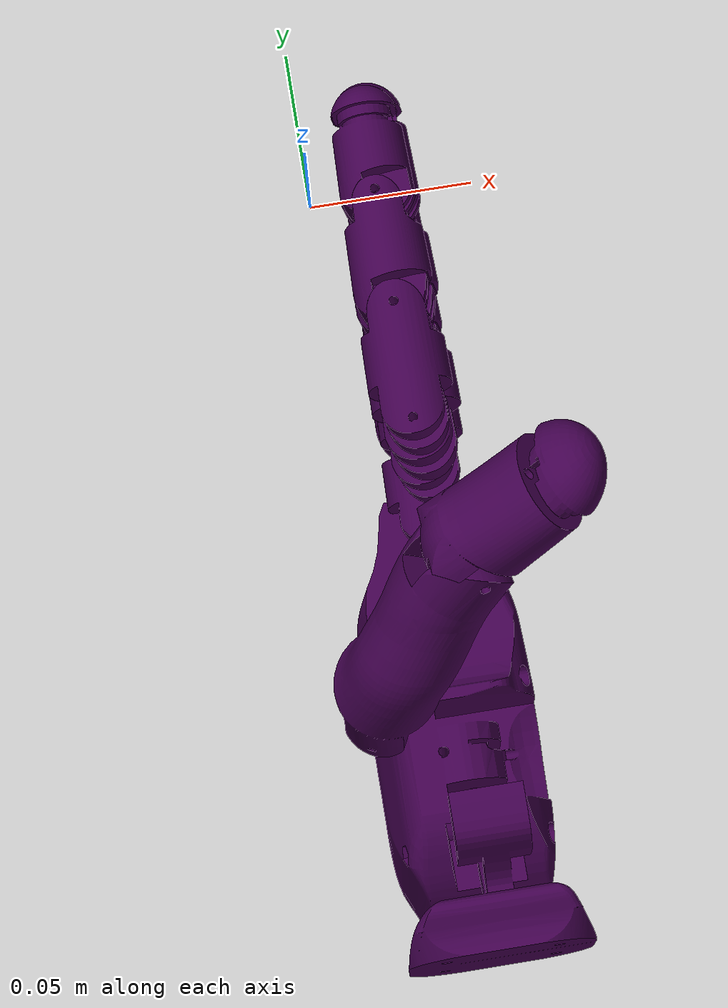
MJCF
<mujoco model="robotic_hand">
    <compiler angle="radian" inertiafromgeom="false" coordinate="local"/>

    <default>
        <joint armature="1" damping="1" limited="true"/>
        <motor ctrllimited="true" ctrlrange="-1 1"/>
    </default>

    <asset>
        <!-- Base -->
        <mesh name="palma_dorso" file="meshes/palma_dorso_link.STL"/>
        <mesh name="conectores" file="meshes/conectores_links.STL"/>

        <!-- Index finger -->
        <mesh name="indice_link0" file="meshes/indice_link0.STL"/>
        <mesh name="indice_link1" file="meshes/indice_link1.STL"/>
        <mesh name="indice_link2" file="meshes/indice_link2.STL"/>

        <!-- Middle finger -->
        <mesh name="medio_link0" file="meshes/medio_link0.STL"/>
        <mesh name="medio_link1" file="meshes/medio_link1.STL"/>
        <mesh name="medio_link2" file="meshes/medio_link2.STL"/>

        <!-- Ring finger -->
        <mesh name="anular_link0" file="meshes/anular_link0.STL"/>
        <mesh name="anular_link1" file="meshes/anular_link1.STL"/>
        <mesh name="anular_link2" file="meshes/anular_link2.STL"/>

        <!-- Little finger -->
        <mesh name="menique_link0" file="meshes/menique_link0.STL"/>
        <mesh name="menique_link1" file="meshes/menique_link1.STL"/>
        <mesh name="menique_link2" file="meshes/menique_link2.STL"/>

        <!-- Thumb -->
        <mesh name="pulgar_link0" file="meshes/pulgar_link0.STL"/>
        <mesh name="pulgar_link1" file="meshes/pulgar_link1.STL"/>

        <material name="purple" rgba="0.25 0.0 0.3 1.0"/>
    </asset>

    <worldbody>
        <body name="base_link" pos="0 0 0">
            <inertial pos="0.01266 0.007711 0.22272" mass="0.20247"
                     diaginertia="0.0014611 0.00098384 0.00050623"
                     xyinertia="3.6753e-05" xzinertia="-4.2033e-06" yzinertia="-0.00016151"/>
            <geom type="mesh" material="purple" mesh="palma_dorso"/>
            <geom type="mesh" material="purple" mesh="conectores" pos="0.00762 -0.225244 0.236582" euler="1.5708 0 0"/>

            <!-- Index finger -->
            <body name="indice_link0" pos="0.017381 -0.10655 0.111803" euler="1.5708 0 0.09642">
                <inertial pos="-0.000138 0.012553 -0.016706" mass="0.0112932"
                         diaginertia="1.70111e-06 1.39435e-06 8.46994e-07"
                         xyinertia="-1.07101e-09" xzinertia="-8.52503e-09" yzinertia="1.09842e-09"/>
                <joint name="joint_indice_0" type="hinge" axis="0 1 0" range="-3.14159 3.14159"/>
                <geom type="mesh" material="purple" mesh="indice_link0"/>

                <body name="indice_link1" pos="0 0.000534 -0.032043">
                    <inertial pos="-0.000615 0.011916 -0.015288" mass="0.0094502"
                             diaginertia="1.06519e-06 9.75778e-07 5.57819e-07"
                             xyinertia="-3.7385e-10" xzinertia="3.33799e-08" yzinertia="2.66689e-09"/>
                    <joint name="joint_indice_1" type="hinge" axis="0 1 0" range="-0.95993 0"/>
                    <geom type="mesh" material="purple" mesh="indice_link1"/>

                    <body name="indice_link2" pos="0 0.001236 -0.031738">
                        <inertial pos="-0.000414 0.01074 -0.013386" mass="0.00844698"
                                 diaginertia="9.20898e-07 9.06546e-07 3.65181e-07"
                                 xyinertia="2.2781e-11" xzinertia="2.33875e-08" yzinertia="-9.81161e-10"/>
                        <joint name="joint_indice_2" type="hinge" axis="0 1 0" range="0 1.1868"/>
                        <geom type="mesh" material="purple" mesh="indice_link2"/>
                    </body>
                </body>
            </body>

            <!-- Middle finger -->
            <body name="medio_link0" pos="0.017396 -0.10571 0.1" euler="1.5708 0 0.12292">
                <inertial pos="-0.000157 -0.004676 -0.017777" mass="0.0148708"
                         diaginertia="2.70022e-06 2.29788e-06 1.24182e-06"
                         xyinertia="-1.50316e-09" xzinertia="-1.3278e-08" yzinertia="8.77395e-09"/>
                <joint name="joint_medio_0" type="hinge" axis="0 1 0" range="-3.14159 3.14159"/>
                <geom type="mesh" material="purple" mesh="medio_link0"/>

                <body name="medio_link1" pos="-2.1e-05 0 -0.03524">
                    <inertial pos="-0.000643 -0.004885 -0.017081" mass="0.0121315"
                             diaginertia="1.64138e-06 1.54301e-06 8.12468e-07"
                             xyinertia="-1.95095e-10" xzinertia="5.14142e-08" yzinertia="5.52304e-10"/>
                    <joint name="joint_medio_1" type="hinge" axis="0 1 0" range="-3.14159 3.14159"/>
                    <geom type="mesh" material="purple" mesh="medio_link1"/>

                    <body name="medio_link2" pos="0 0 -0.035366">
                        <inertial pos="-0.005047 0.007266 0.087066" mass="0.20247"
                                 diaginertia="0.00145186 0.000985511 0.000513804"
                                 xyinertia="5.30453e-05" xzinertia="9.35133e-05" yzinertia="-0.000154434"/>
                        <joint name="joint_medio_2" type="hinge" axis="0.000914 -0.999987 -0.005061" range="-3.14159 3.14159"/>
                        <geom type="mesh" material="purple" mesh="medio_link2"/>
                    </body>
                </body>
            </body>

            <!-- Ring finger -->
            <body name="anular_link0" pos="0.017396 -0.10601 0.079212" euler="1.5708 0 0.13729">
                <inertial pos="-0.000147 -0.012697 -0.017313" mass="0.0126336"
                         diaginertia="2.06877e-06 1.7254e-06 1.00343e-06"
                         xyinertia="-1.20016e-09" xzinertia="-9.77141e-09" yzinertia="6.07253e-09"/>
                <joint name="joint_anular_0" type="hinge" axis="0 1 0" range="-3.14159 3.14159"/>
                <geom type="mesh" material="purple" mesh="anular_link0"/>

                <body name="anular_link1" pos="-2.1e-05 -0.000351 -0.033417">
                    <inertial pos="-0.000639 -0.012513 -0.016258" mass="0.010609"
                             diaginertia="1.3028e-06 1.2133e-06 6.683e-07"
                             xyinertia="-1.4775e-10" xzinertia="4.3567e-08" yzinertia="-3.0441e-10"/>
                    <joint name="joint_anular_1" type="hinge" axis="0.000146 1 -0.000863" range="-3.14159 3.14159"/>
                    <geom type="mesh" material="purple" mesh="anular_link1"/>

                    <body name="anular_link2" pos="0 -0.000424 -0.033504">
                        <inertial pos="-0.000444 -0.012109 -0.014311" mass="0.00947096"
                                 diaginertia="1.12538e-06 1.11933e-06 4.39896e-07"
                                 xyinertia="-6.25777e-10" xzinertia="3.16594e-08" yzinertia="-3.97943e-10"/>
                        <joint name="joint_anular_2" type="hinge" axis="0 1 0" range="-3.14159 3.14159"/>
                        <geom type="mesh" material="purple" mesh="anular_link2"/>
                    </body>
                </body>
            </body>

            <!-- Little finger -->
            <body name="menique_link0" pos="0.018096 -0.11691 0.049705" euler="1.5708 0 0">
                <inertial pos="-0.000147 -0.011566 -0.014748" mass="0.00880254"
                         diaginertia="1.06448e-06 8.71957e-07 5.8784e-07"
                         xyinertia="-7.25387e-10" xzinertia="-5.5521e-09" yzinertia="3.34074e-09"/>
                <joint name="joint_menique_0" type="hinge" axis="0 1 0" range="-3.14159 3.14159"/>
                <geom type="mesh" material="purple" mesh="menique_link0"/>

                <body name="menique_link1" pos="0 -0.000695 -0.0281">
                    <inertial pos="-0.000609 -0.010995 -0.013626" mass="0.0074677"
                             diaginertia="6.7288e-07 6.2574e-07 3.9564e-07"
                             xyinertia="-9.6056e-11" xzinertia="2.4674e-08" yzinertia="2.4801e-10"/>
                    <joint name="joint_menique_1" type="hinge" axis="0 1 0" range="-3.14159 3.14159"/>
                    <geom type="mesh" material="purple" mesh="menique_link1"/>

                    <body name="menique_link2" pos="0 -0.000975 -0.028">
                        <inertial pos="-0.000425 -0.010032 -0.011482" mass="0.00613512"
                                 diaginertia="5.34284e-07 5.392e-07 2.36691e-07"
                                 xyinertia="4.89343e-11" xzinertia="1.501e-08" yzinertia="-4.52288e-10"/>
                        <joint name="joint_menique_2" type="hinge" axis="0 1 0" range="-3.14159 3.14159"/>
                        <geom type="mesh" material="purple" mesh="menique_link2"/>
                    </body>
                </body>
            </body>

            <!-- Thumb -->
            <body name="pulgar_link0" pos="0.018291 -0.13588 0.129681" euler="1.5708 -0.47347 0">
                <inertial pos="0.004274 0.035281 0.03492" mass="0.0324581"
                         diaginertia="1.35094e-05 6.92053e-06 9.69092e-06"
                         xyinertia="-1.51351e-06" xzinertia="9.14252e-07" yzinertia="4.18994e-06"/>
                <joint name="joint_pulgar_0" type="hinge" axis="0 0 1" range="-3.14159 3.14159"/>
                <geom type="mesh" material="purple" mesh="pulgar_link0"/>

                <body name="pulgar_link1" pos="-0.016974 0.039947 -0.024949" euler="-0.17928 -0.16915 -0.27411">
                    <inertial pos="0.032966 0.035823 0.028152" mass="0.0188"
                             diaginertia="3.50846e-06 2.33645e-06 2.8012e-06"
                             xyinertia="-5.45407e-07" xzinertia="3.34377e-07" yzinertia="9.85584e-07"/>
                    <joint name="joint_pulgar_1" type="hinge" axis="0.52368 0.38683 0.75902" range="-3.14159 3.14159"/>
                    <geom type="mesh" material="purple" mesh="pulgar_link1"/>
                </body>
            </body>
        </body>
    </worldbody>

    <actuator>
        <!-- Index finger -->
        <motor joint="joint_indice_0"/>
        <motor joint="joint_indice_1"/>
        <motor joint="joint_indice_2"/>

        <!-- Middle finger -->
        <motor joint="joint_medio_0"/>
        <motor joint="joint_medio_1"/>
        <motor joint="joint_medio_2"/>

        <!-- Ring finger -->
        <motor joint="joint_anular_0"/>
        <motor joint="joint_anular_1"/>
        <motor joint="joint_anular_2"/>

        <!-- Little finger -->
        <motor joint="joint_menique_0"/>
        <motor joint="joint_menique_1"/>
        <motor joint="joint_menique_2"/>

        <!-- Thumb -->
        <motor joint="joint_pulgar_0"/>
        <motor joint="joint_pulgar_1"/>
    </actuator>
</mujoco>
